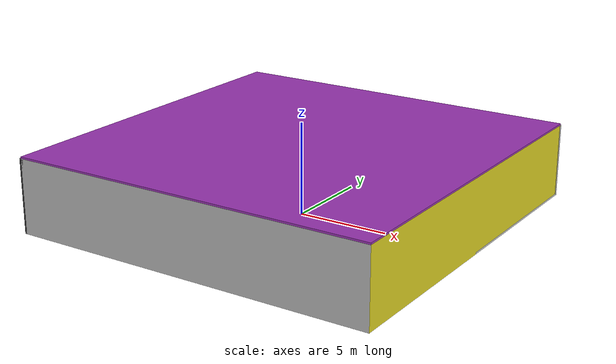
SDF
<sdf version="1.4">
 <world name="default">
  <physics type="ode">
   <max_step_size>0.001</max_step_size>
   <real_time_factor>1</real_time_factor>
   <real_time_update_rate>1000</real_time_update_rate>
   <gravity>0 0 -9.8</gravity>
  </physics>
  <scene><ambient>0.4 0.4 0.4 1</ambient><background>0.7 0.7 0.7 1</background><shadows>1</shadows></scene>
  <model name="Surrounding">
   <static>1</static>
   <link name="Ceiling">
    <collision name="Ceiling_Collision"><geometry><box><size>20 20 0.1</size></box></geometry></collision>
    <visual name="Ceiling_Visual">
     <geometry><box><size>20 20 0.1</size></box></geometry>
     <material>
      <script><uri>file://media/materials/scripts/gazebo.material</uri><name>Gazebo/Purple</name></script>
     </material>
    </visual>
    <pose>0 0 4.05 0 0 0</pose>
   </link>
   <link name="Wall_South">
    <collision name="Wall_South_Collision">
     <geometry><box><size>20 0 4</size></box></geometry>
     <pose>0 0 2 0 -0 0</pose>
    </collision>
    <visual name="Wall_South_Visual">
     <pose>0 0 2 0 -0 0</pose>
     <geometry><box><size>20 0 4</size></box></geometry>
     <material>
      <script><uri>file://media/materials/scripts/gazebo.material</uri><name>Gazebo/JointAnchor</name></script>
     </material>
    </visual>
    <velocity_decay><linear>0</linear><angular>0</angular></velocity_decay>
    <pose>0 -10 0 0 -0 0</pose>
   </link>
   <link name="Wall_East">
    <collision name="Wall_21_Collision">
     <geometry><box><size>20 0 4</size></box></geometry>
     <pose>0 0 2 0 -0 0</pose>
    </collision>
    <visual name="Wall_21_Visual">
     <pose>0 0 2 0 -0 0</pose>
     <geometry><box><size>20 0 4</size></box></geometry>
     <material>
      <script><uri>file://media/materials/scripts/gazebo.material</uri><name>Gazebo/YellowGlow</name></script>
     </material>
    </visual>
    <velocity_decay><linear>0</linear><angular>0</angular></velocity_decay>
    <pose>10 0 0 0 -0 1.5708</pose>
   </link>
   <link name="Wall_North">
    <collision name="Wall_22_Collision">
     <geometry><box><size>20 0.2 4</size></box></geometry>
     <pose>0 0 2 0 -0 0</pose>
    </collision>
    <visual name="Wall_22_Visual">
     <pose>0 0 2 0 -0 0</pose>
     <geometry><box><size>20 0.2 4</size></box></geometry>
     <material>
      <script><uri>file://media/materials/scripts/gazebo.material</uri><name>Gazebo/GreyTransparent</name></script>
     </material>
    </visual>
    <velocity_decay><linear>0</linear><angular>0</angular></velocity_decay>
    <pose>0 10 0 0 -0 0</pose>
   </link>
   <link name="Wall_West">
    <collision name="Wall_23_Collision">
     <geometry><box><size>20 0.2 4</size></box></geometry>
     <pose>0 0 2 0 -0 0</pose>
    </collision>
    <visual name="Wall_23_Visual">
     <pose>0 0 2 0 -0 0</pose>
     <geometry><box><size>20 0.2 4</size></box></geometry>
     <material>
      <script><uri>file://media/materials/scripts/gazebo.material</uri><name>Gazebo/FlatBlack</name></script>
     </material>
    </visual>
    <velocity_decay><linear>0</linear><angular>0</angular></velocity_decay>
    <pose>-10 0 0 0 0 -1.5708</pose>
   </link>
   <link name="Ground_link">
    <collision name="collision">
     <pose>0 0 .05 0 -0 0</pose>
     <geometry><box><size>20 20 0.1</size></box></geometry>
    </collision>
    <visual name="visual">
     <pose>0 0 .05 0 -0 0</pose>
     <geometry><box><size>20 20 0.1</size></box></geometry>
     <material>
      <script><uri>file://media/materials/scripts/gazebo.material</uri><name>Gazebo/CeilingTiled</name></script>
     </material>
    </visual>
   </link>
   <static>1</static>
  </model>
  <spherical_coordinates>
   <surface_model>EARTH_WGS84</surface_model>
   <latitude_deg>0</latitude_deg>
   <longitude_deg>0</longitude_deg>
   <elevation>0</elevation>
   <heading_deg>0</heading_deg>
  </spherical_coordinates>
  <light name="lightball_0" type="diffuse">
   <diffuse>0.8 0.8 0.8 1</diffuse>
   <specular>0.2 0.2 0.2 1</specular>
   <attenuation>
    <range>100</range>
    <constant>0.7</constant>
    <linear>0.01</linear>
    <quadratic>0.001</quadratic>
   </attenuation>
   <direction>-0.5 0.1 -0.9</direction>
   <pose>-7.16857271515 -5.66870327279 1.03566405945 0 0 0</pose>
  </light>
  <light name="lightball_1" type="diffuse">
   <diffuse>0.8 0.8 0.8 1</diffuse>
   <specular>0.2 0.2 0.2 1</specular>
   <attenuation>
    <range>100</range>
    <constant>0.7</constant>
    <linear>0.01</linear>
    <quadratic>0.001</quadratic>
   </attenuation>
   <direction>-0.5 0.1 -0.9</direction>
   <pose>6.57257827093 -9.36672194508 2.52457249584 0 0 0</pose>
  </light>
  <light name="lightball_2" type="diffuse">
   <diffuse>0.8 0.8 0.8 1</diffuse>
   <specular>0.2 0.2 0.2 1</specular>
   <attenuation>
    <range>100</range>
    <constant>0.7</constant>
    <linear>0.01</linear>
    <quadratic>0.001</quadratic>
   </attenuation>
   <direction>-0.5 0.1 -0.9</direction>
   <pose>-2.10949369154 1.82647034978 1.20241043573 0 0 0</pose>
  </light>
  <light name="lightball_3" type="diffuse">
   <diffuse>0.8 0.8 0.8 1</diffuse>
   <specular>0.2 0.2 0.2 1</specular>
   <attenuation>
    <range>100</range>
    <constant>0.7</constant>
    <linear>0.01</linear>
    <quadratic>0.001</quadratic>
   </attenuation>
   <direction>-0.5 0.1 -0.9</direction>
   <pose>3.79618551098 7.88572833546 2.79946259426 0 0 0</pose>
  </light>
  <light name="lightball_4" type="diffuse">
   <diffuse>0.8 0.8 0.8 1</diffuse>
   <specular>0.2 0.2 0.2 1</specular>
   <attenuation>
    <range>100</range>
    <constant>0.7</constant>
    <linear>0.01</linear>
    <quadratic>0.001</quadratic>
   </attenuation>
   <direction>-0.5 0.1 -0.9</direction>
   <pose>-1.93680407692 3.28753659494 1.90426424085 0 0 0</pose>
  </light>
  <light name="lightball_5" type="diffuse">
   <diffuse>0.8 0.8 0.8 1</diffuse>
   <specular>0.2 0.2 0.2 1</specular>
   <attenuation>
    <range>100</range>
    <constant>0.7</constant>
    <linear>0.01</linear>
    <quadratic>0.001</quadratic>
   </attenuation>
   <direction>-0.5 0.1 -0.9</direction>
   <pose>-6.09508379043 1.06225389582 2.19781580873 0 0 0</pose>
  </light>
  <light name="lightball_6" type="diffuse">
   <diffuse>0.8 0.8 0.8 1</diffuse>
   <specular>0.2 0.2 0.2 1</specular>
   <attenuation>
    <range>100</range>
    <constant>0.7</constant>
    <linear>0.01</linear>
    <quadratic>0.001</quadratic>
   </attenuation>
   <direction>-0.5 0.1 -0.9</direction>
   <pose>6.56898616958 8.11530287992 3.24139760463 0 0 0</pose>
  </light>
  <light name="lightball_7" type="diffuse">
   <diffuse>0.8 0.8 0.8 1</diffuse>
   <specular>0.2 0.2 0.2 1</specular>
   <attenuation>
    <range>100</range>
    <constant>0.7</constant>
    <linear>0.01</linear>
    <quadratic>0.001</quadratic>
   </attenuation>
   <direction>-0.5 0.1 -0.9</direction>
   <pose>-9.80509495766 -9.68363670258 3.59753131887 0 0 0</pose>
  </light>
  <light name="lightball_8" type="diffuse">
   <diffuse>0.8 0.8 0.8 1</diffuse>
   <specular>0.2 0.2 0.2 1</specular>
   <attenuation>
    <range>100</range>
    <constant>0.7</constant>
    <linear>0.01</linear>
    <quadratic>0.001</quadratic>
   </attenuation>
   <direction>-0.5 0.1 -0.9</direction>
   <pose>-3.21743998934 6.98907100433 2.73698024192 0 0 0</pose>
  </light>
  <light name="lightball_9" type="diffuse">
   <diffuse>0.8 0.8 0.8 1</diffuse>
   <specular>0.2 0.2 0.2 1</specular>
   <attenuation>
    <range>100</range>
    <constant>0.7</constant>
    <linear>0.01</linear>
    <quadratic>0.001</quadratic>
   </attenuation>
   <direction>-0.5 0.1 -0.9</direction>
   <pose>0.405444047487 8.59250483563 1.74786884691 0 0 0</pose>
  </light>
  <light name="lightball_10" type="diffuse">
   <diffuse>0.8 0.8 0.8 1</diffuse>
   <specular>0.2 0.2 0.2 1</specular>
   <attenuation>
    <range>100</range>
    <constant>0.7</constant>
    <linear>0.01</linear>
    <quadratic>0.001</quadratic>
   </attenuation>
   <direction>-0.5 0.1 -0.9</direction>
   <pose>-0.645671935372 -0.75481824933 3.16885751844 0 0 0</pose>
  </light>
  <light name="lightball_11" type="diffuse">
   <diffuse>0.8 0.8 0.8 1</diffuse>
   <specular>0.2 0.2 0.2 1</specular>
   <attenuation>
    <range>100</range>
    <constant>0.7</constant>
    <linear>0.01</linear>
    <quadratic>0.001</quadratic>
   </attenuation>
   <direction>-0.5 0.1 -0.9</direction>
   <pose>-9.72898962632 6.43547827314 2.33718946257 0 0 0</pose>
  </light>
  <include><uri>model://cabinet</uri><pose>-7.35946768654 1.34745964069 0 0 0 0.0617716578067</pose></include>
  <include>
   <uri>model://construction_cone</uri>
   <pose>-4.99724679835 1.73311660417 0 0 0 1.36328659816</pose>
  </include>
  <include>
   <uri>model://textured_shapes</uri>
   <pose>-1.39846243226 4.83433361463 0 0 0 0.992569955076</pose>
  </include>
  <include><uri>model://cabinet</uri><pose>4.52258532735 -7.21265500514 0 0 0 1.61083618036</pose></include>
 </world>
</sdf>

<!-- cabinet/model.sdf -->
<sdf version="1.5">
  <model name="cabinet">
    <static>true</static>
    <link name="cabinet_bottom_plate">
      <inertial>
        <pose>0 0 -1 0 0 0</pose>
        <inertia>
          <ixx>2.050000</ixx>
          <ixy>0</ixy>
          <ixz>0</ixz>
          <iyy>2.050000</iyy>
          <iyz>0</iyz>
          <izz>2.050000</izz>
        </inertia>
        <mass>25.000000</mass>
      </inertial>
      <collision name="cabinet_bottom_plate_geom">
        <pose>0 0 0.010000 0 0 0</pose>
        <geometry>
          <box>
            <size>0.450000 0.450000 0.020000</size>
          </box>
        </geometry>
      </collision>
      <visual name="cabinet_bottom_plate_geom_visual">
        <pose>0 0 0.010000 0 0 0</pose>
        <geometry>
          <box>
            <size>0.450000 0.450000 0.020000</size>
          </box>
        </geometry>
        <material>
          <script>
            <uri>model://media/materials/scripts/gazebo.material</uri>
            <name>Gazebo/Wood</name>
          </script>
        </material>
      </visual>
      <collision name="cabinet_bottom_plate_geom_cabinet_back_plate">
        <pose>0.235000 0 0.510000 0 0 0</pose>
        <geometry>
          <box>
            <size>0.020000 0.450000 1.020000</size>
          </box>
        </geometry>
      </collision>
      <visual name="cabinet_bottom_plate_geom_cabinet_back_plate_visual">
        <pose>0.235000 0 0.510000 0 0 0</pose>
        <geometry>
          <box>
            <size>0.020000 0.450000 1.020000</size>
          </box>
        </geometry>
        <material>
          <script>
            <uri>model://media/materials/scripts/gazebo.material</uri>
            <name>Gazebo/Wood</name>
          </script>
        </material>
      </visual>
      <collision name="cabinet_bottom_plate_geom_cabinet_left_plate">
        <pose>0 0.235000 0.510000 0 0 0</pose>
        <geometry>
          <box>
            <size>0.450000 0.020000 1.020000</size>
          </box>
        </geometry>
      </collision>
      <visual name="cabinet_bottom_plate_geom_cabinet_left_plate_visual">
        <pose>0 0.235000 0.510000 0 0 0</pose>
        <geometry>
          <box>
            <size>0.450000 0.020000 1.020000</size>
          </box>
        </geometry>
        <material>
          <script>
            <uri>model://media/materials/scripts/gazebo.material</uri>
            <name>Gazebo/Wood</name>
          </script>
        </material>
      </visual>
      <collision name="cabinet_bottom_plate_geom_cabinet_middle_plate">
        <pose>0 0 0.510000 0 0 0</pose>
        <geometry>
          <box>
            <size>0.450000 0.450000 0.020000</size>
          </box>
        </geometry>
      </collision>
      <visual name="cabinet_bottom_plate_geom_cabinet_middle_plate_visual">
        <pose>0 0 0.510000 0 0 0</pose>
        <geometry>
          <box>
            <size>0.450000 0.450000 0.020000</size>
          </box>
        </geometry>
        <material>
          <script>
            <uri>model://media/materials/scripts/gazebo.material</uri>
            <name>Gazebo/Wood</name>
          </script>
        </material>
      </visual>
      <collision name="cabinet_bottom_plate_geom_cabinet_right_plate">
        <pose>0 -0.235000 0.510000 0 0 0</pose>
        <geometry>
          <box>
            <size>0.450000 0.020000 1.020000</size>
          </box>
        </geometry>
      </collision>
      <visual name="cabinet_bottom_plate_geom_cabinet_right_plate_visual">
        <pose>0 -0.235000 0.510000 0 0 0</pose>
        <geometry>
          <box>
            <size>0.450000 0.020000 1.020000</size>
          </box>
        </geometry>
        <material>
          <script>
            <uri>model://media/materials/scripts/gazebo.material</uri>
            <name>Gazebo/Wood</name>
          </script>
        </material>
      </visual>
      <collision name="cabinet_bottom_plate_geom_cabinet_top_plate">
        <pose>0 0 1.010000 0 0 0</pose>
        <geometry>
          <box>
            <size>0.450000 0.450000 0.020000</size>
          </box>
        </geometry>
      </collision>
      <visual name="cabinet_bottom_plate_geom_cabinet_top_plate_visual">
        <pose>0 0 1.010000 0 0 0</pose>
        <geometry>
          <box>
            <size>0.450000 0.450000 0.020000</size>
          </box>
        </geometry>
        <material>
          <script>
            <uri>model://media/materials/scripts/gazebo.material</uri>
            <name>Gazebo/Wood</name>
          </script>
        </material>
      </visual>
    </link>
  </model>
</sdf>

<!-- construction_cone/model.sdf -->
<sdf version="1.5">
  <model name="Construction Cone">
    <link name="link">
      <collision name="collision">
        <geometry>
          <mesh>
            <scale>10 10 10</scale>
            <uri>file://isr-testbed/construction_cone/meshes/construction_cone.dae</uri>
          </mesh>
        </geometry>
      </collision>
      <visual name="visual">
        <geometry>
          <mesh>
            <scale>10 10 10</scale>
            <uri>file://isr-testbed/construction_cone/meshes/construction_cone.dae</uri>
          </mesh>
        </geometry>
      </visual>
    </link>
  </model>
</sdf>

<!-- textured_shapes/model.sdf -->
<sdf version="1.6">
  <model name="textured_shapes">
    <pose>0 0 0.5 0 0 0</pose>
    <link name="box">
      <pose>0 -1.5 0 0 0 0</pose>
      <collision name="collision">
        <geometry>
          <box>
            <size>1 1 1</size>
          </box>
        </geometry>
      </collision>
      <visual name="visual">
        <geometry>
          <box>
            <size>1 1 1</size>
          </box>
        </geometry>
        <material>
          <script>
            <uri>model://../model_source/models/textured_shapes/materials/scripts</uri>
            <uri>model://../model_source/models/textured_shapes/materials/textures</uri>
            <name>TexturedShape/Squares</name>
          </script>
        </material>
      </visual>
    </link>
    <link name="sphere">
      <collision name="collision">
        <geometry>
          <sphere>
            <radius>0.5</radius>
          </sphere>
        </geometry>
      </collision>
      <visual name="visual">
        <geometry>
          <sphere>
            <radius>0.5</radius>
          </sphere>
        </geometry>
        <material>
          <script>
            <uri>model://../model_source/models/textured_shapes/materials/scripts</uri>
            <uri>model://../model_source/models/textured_shapes/materials/textures</uri>
            <name>TexturedShape/Squares</name>
          </script>
        </material>
      </visual>
    </link>
    <link name="cylinder">
      <pose>0 1.5 0 0 0 0</pose>
      <collision name="collision">
        <geometry>
          <cylinder>
            <radius>0.5</radius>
            <length>1</length>
          </cylinder>
        </geometry>
      </collision>
      <visual name="visual">
        <geometry>
          <cylinder>
            <radius>0.5</radius>
            <length>1</length>
          </cylinder>
        </geometry>
        <material>
          <script>
            <uri>model://../model_source/models/textured_shapes/materials/scripts</uri>
            <uri>model://../model_source/models/textured_shapes/materials/textures</uri>
            <name>TexturedShape/Squares</name>
          </script>
        </material>
      </visual>
    </link>
  </model>
</sdf>
